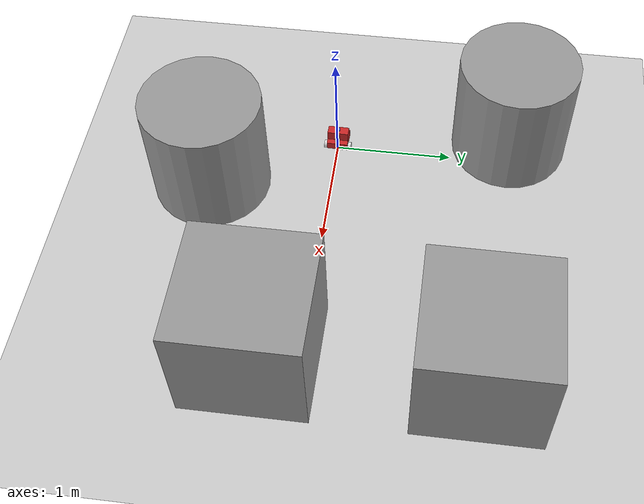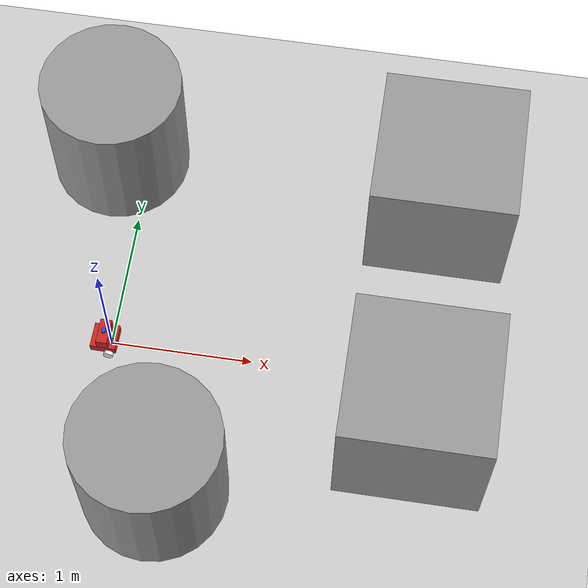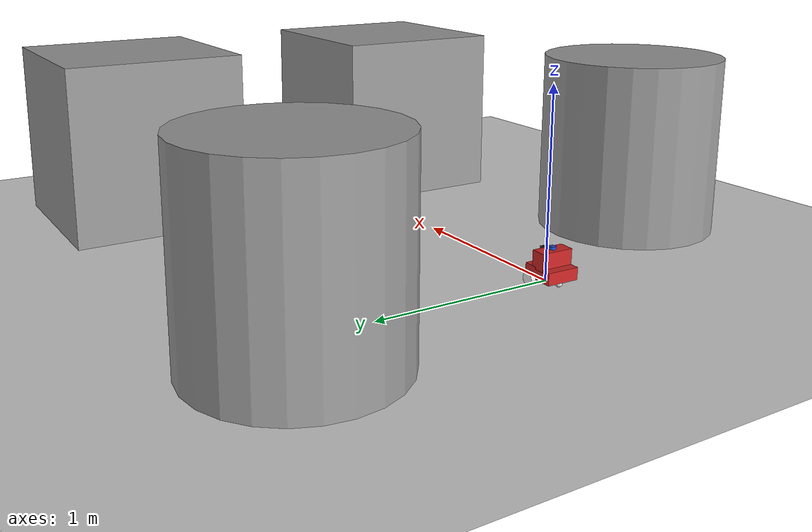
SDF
<sdf version="1.7">
 <world name="default">
  <light name="sun" type="directional">
   <pose>0 0 10 0 -0 0</pose>
   <diffuse>0.8 0.8 0.8 1</diffuse>
   <specular>0.2 0.2 0.2 1</specular>
   <attenuation>
    <range>1000</range>
    <constant>0.9</constant>
    <linear>0.01</linear>
    <quadratic>0.001</quadratic>
   </attenuation>
   <direction>-0.5 0.1 -0.9</direction>
   <spot><inner_angle>0</inner_angle><outer_angle>0</outer_angle><falloff>0</falloff></spot>
  </light>
  <model name="ground_plane">
   <static>1</static>
   <link name="link">
    <collision name="collision">
     <geometry><plane><normal>0 0 1</normal><size>100 100</size></plane></geometry>
     <surface><friction><ode><mu>100</mu><mu2>50</mu2></ode></friction></surface>
    </collision>
    <visual name="visual">
     <cast_shadows>0</cast_shadows>
     <geometry><plane><normal>0 0 1</normal><size>100 100</size></plane></geometry>
     <material>
      <script><uri>file://media/materials/scripts/gazebo.material</uri><name>Gazebo/Grey</name></script>
     </material>
    </visual>
   </link>
  </model>
  <gravity>0 0 -9.8</gravity>
  <magnetic_field>6e-06 2.3e-05 -4.2e-05</magnetic_field>
  <atmosphere type="adiabatic"/>
  <physics type="ode">
   <max_step_size>0.001</max_step_size>
   <real_time_factor>1</real_time_factor>
   <real_time_update_rate>1000</real_time_update_rate>
  </physics>
  <scene><ambient>0.4 0.4 0.4 1</ambient><background>0.7 0.7 0.7 1</background><shadows>1</shadows></scene>
  <audio><device>default</device></audio>
  <spherical_coordinates>
   <surface_model>EARTH_WGS84</surface_model>
   <latitude_deg>0</latitude_deg>
   <longitude_deg>0</longitude_deg>
   <elevation>0</elevation>
   <heading_deg>0</heading_deg>
  </spherical_coordinates>
  <model name="botluke">
   <link name="base_link">
    <inertial>
     <pose>-0.040833 0 0.053939 0 -0 0</pose>
     <mass>0.66</mass>
     <inertia>
      <ixx>0.00307384</ixx>
      <ixy>-1.61559e-27</ixy>
      <ixz>-0.000109917</ixz>
      <iyy>0.00312146</iyy>
      <iyz>0</iyz>
      <izz>0.00292976</izz>
     </inertia>
    </inertial>
    <collision name="base_link_fixed_joint_lump__chassis_link_collision">
     <pose>-0.04 0 0.0325 0 -0 0</pose>
     <geometry><box><size>0.18 0.18 0.065</size></box></geometry>
    </collision>
    <collision name="base_link_fixed_joint_lump__camera_link_collision_1">
     <pose>0.025 0 0.105 0 -0 0</pose>
     <geometry><box><size>0.014 0.04 0.08</size></box></geometry>
    </collision>
    <collision name="base_link_fixed_joint_lump__caster_holder_link_collision_2">
     <pose>-0.1 0 0 0 -0 0</pose>
     <geometry><cylinder><length>0.04</length><radius>0.0175</radius></cylinder></geometry>
    </collision>
    <collision name="base_link_fixed_joint_lump__caster_link_collision_3">
     <pose>-0.1 0 -0.02 0 -0 0</pose>
     <geometry><sphere><radius>0.0125</radius></sphere></geometry>
     <surface><friction><ode><mu>0.001</mu><mu2>0.001</mu2></ode></friction></surface>
    </collision>
    <collision name="base_link_fixed_joint_lump__ldlidar_base_collision_4">
     <pose>-0.04 0 0.1 0 -0 0</pose>
     <geometry><box><size>0.08 0.18 0.095</size></box></geometry>
    </collision>
    <collision name="base_link_fixed_joint_lump__ldlidar_link_collision_5">
     <pose>-0.04 0 0.155 0 0 -1.57079</pose>
     <geometry><cylinder><length>0.0175</length><radius>0.0175</radius></cylinder></geometry>
    </collision>
    <visual name="base_link_fixed_joint_lump__chassis_link_visual">
     <pose>-0.04 0 0.0325 0 -0 0</pose>
     <geometry><box><size>0.18 0.18 0.065</size></box></geometry>
     <material>
      <script><name>Gazebo/Red</name><uri>file://media/materials/scripts/gazebo.material</uri></script>
     </material>
    </visual>
    <visual name="base_link_fixed_joint_lump__camera_link_visual_1">
     <pose>0.025 0 0.105 0 -0 0</pose>
     <geometry><box><size>0.014 0.04 0.08</size></box></geometry>
     <material>
      <script><name>Gazebo/Black</name><uri>file://media/materials/scripts/gazebo.material</uri></script>
     </material>
    </visual>
    <visual name="base_link_fixed_joint_lump__caster_holder_link_visual_2">
     <pose>-0.1 0 0 0 -0 0</pose>
     <geometry><cylinder><length>0.04</length><radius>0.0175</radius></cylinder></geometry>
     <material>
      <script><name>Gazebo/White</name><uri>file://media/materials/scripts/gazebo.material</uri></script>
     </material>
    </visual>
    <visual name="base_link_fixed_joint_lump__caster_link_visual_3">
     <pose>-0.1 0 -0.02 0 -0 0</pose>
     <geometry><sphere><radius>0.0125</radius></sphere></geometry>
     <material>
      <script><name>Gazebo/White</name><uri>file://media/materials/scripts/gazebo.material</uri></script>
     </material>
    </visual>
    <visual name="base_link_fixed_joint_lump__ldlidar_base_visual_4">
     <pose>-0.04 0 0.1 0 -0 0</pose>
     <geometry><box><size>0.08 0.18 0.095</size></box></geometry>
     <material>
      <script><name>Gazebo/Red</name><uri>file://media/materials/scripts/gazebo.material</uri></script>
     </material>
    </visual>
    <visual name="base_link_fixed_joint_lump__ldlidar_link_visual_5">
     <pose>-0.04 0 0.155 0 0 -1.57079</pose>
     <geometry><cylinder><length>0.0175</length><radius>0.0175</radius></cylinder></geometry>
     <material>
      <script><name>Gazebo/Blue</name><uri>file://media/materials/scripts/gazebo.material</uri></script>
     </material>
    </visual>
    <sensor name="camera" type="camera">
     <visualize>1</visualize>
     <update_rate>10</update_rate>
     <camera name="head">
      <horizontal_fov>1.089</horizontal_fov>
      <image><width>640</width><height>480</height><format>R8G8B8</format></image>
      <clip><near>0.05</near><far>8</far></clip>
     </camera>
     <plugin name="camera_controller" filename="libgazebo_ros_camera.so">
      <frame_name>camera_link_optical</frame_name>
     </plugin>
     <pose>0.025 0 0.105 0 -0 0</pose>
    </sensor>
    <sensor name="laser" type="ray">
     <visualize>1</visualize>
     <update_rate>10</update_rate>
     <ray>
      <scan>
       <horizontal>
        <samples>360</samples>
        <min_angle>-3.14</min_angle>
        <max_angle>3.14</max_angle>
        <resolution>1</resolution>
       </horizontal>
       <vertical><samples>1</samples><min_angle>0</min_angle><max_angle>0</max_angle></vertical>
      </scan>
      <range><min>0.3</min><max>12</max></range>
     </ray>
     <plugin name="laser_controller" filename="libgazebo_ros_ray_sensor.so">
      <ros><remapping>~/out:=scan</remapping></ros>
      <output_type>sensor_msgs/LaserScan</output_type>
      <frame_name>ldlidar_link</frame_name>
     </plugin>
     <pose>-0.04 0 0.155 0 -0 -1.5708</pose>
    </sensor>
   </link>
   <joint name="left_wheel_joint" type="revolute">
    <pose relative_to="base_link">0 0.105 0 -1.5708 0 0</pose>
    <parent>base_link</parent>
    <child>left_wheel_link</child>
    <axis>
     <xyz>0 0 1</xyz>
     <limit><lower>-1e+16</lower><upper>1e+16</upper></limit>
     <dynamics><spring_reference>0</spring_reference><spring_stiffness>0</spring_stiffness></dynamics>
    </axis>
   </joint>
   <link name="left_wheel_link">
    <pose relative_to="left_wheel_joint">0 0 0 0 -0 0</pose>
    <inertial>
     <mass>0.05</mass>
     <inertia>
      <ixx>1.753e-05</ixx>
      <ixy>0</ixy>
      <ixz>0</ixz>
      <iyy>1.753e-05</iyy>
      <iyz>0</iyz>
      <izz>2.89851e-05</izz>
     </inertia>
    </inertial>
    <collision name="left_wheel_link_collision">
     <geometry><cylinder><length>0.027</length><radius>0.03405</radius></cylinder></geometry>
    </collision>
    <visual name="left_wheel_link_visual">
     <geometry><cylinder><length>0.027</length><radius>0.03405</radius></cylinder></geometry>
     <material>
      <script><name>Gazebo/White</name><uri>file://media/materials/scripts/gazebo.material</uri></script>
     </material>
    </visual>
   </link>
   <joint name="right_wheel_joint" type="revolute">
    <pose relative_to="base_link">0 -0.105 0 1.5708 -0 0</pose>
    <parent>base_link</parent>
    <child>right_wheel_link</child>
    <axis>
     <xyz>0 0 -1</xyz>
     <limit><lower>-1e+16</lower><upper>1e+16</upper></limit>
     <dynamics><spring_reference>0</spring_reference><spring_stiffness>0</spring_stiffness></dynamics>
    </axis>
   </joint>
   <link name="right_wheel_link">
    <pose relative_to="right_wheel_joint">0 0 0 0 -0 0</pose>
    <inertial>
     <mass>0.05</mass>
     <inertia>
      <ixx>1.753e-05</ixx>
      <ixy>0</ixy>
      <ixz>0</ixz>
      <iyy>1.753e-05</iyy>
      <iyz>0</iyz>
      <izz>2.89851e-05</izz>
     </inertia>
    </inertial>
    <collision name="right_wheel_link_collision">
     <geometry><cylinder><length>0.027</length><radius>0.03405</radius></cylinder></geometry>
    </collision>
    <visual name="right_wheel_link_visual">
     <geometry><cylinder><length>0.027</length><radius>0.03405</radius></cylinder></geometry>
     <material>
      <script><name>Gazebo/White</name><uri>file://media/materials/scripts/gazebo.material</uri></script>
     </material>
    </visual>
   </link>
   <static>0</static>
   <plugin name="gazebo_ros2_control" filename="libgazebo_ros2_control.so">
    <parameters>/home/jlukas/Desktop/My_Project/ROS2/techdiffbot/install/techdiffbot/share/techdiffbot/config/my_controllers.yaml</parameters>
    <parameters>/home/jlukas/Desktop/My_Project/ROS2/techdiffbot/install/techdiffbot/share/techdiffbot/config/gazebo_ros2_ctl_use_sim.yaml</parameters>
   </plugin>
   <pose>-0.00103 2.5e-05 0.034051 -0 -0.015537 -0.020438</pose>
  </model>
  <model name="unit_box">
   <pose>2.1715 1.38207 0.499995 -1e-05 -0 -0</pose>
   <link name="link">
    <inertial>
     <mass>1</mass>
     <inertia>
      <ixx>0.166667</ixx>
      <ixy>0</ixy>
      <ixz>0</ixz>
      <iyy>0.166667</iyy>
      <iyz>0</iyz>
      <izz>0.166667</izz>
     </inertia>
    </inertial>
    <collision name="collision"><geometry><box><size>1 1 1</size></box></geometry></collision>
    <visual name="visual">
     <geometry><box><size>1 1 1</size></box></geometry>
     <material>
      <script><name>Gazebo/Grey</name><uri>file://media/materials/scripts/gazebo.material</uri></script>
     </material>
    </visual>
   </link>
  </model>
  <model name="unit_cylinder">
   <pose>0.503673 -1.02818 0.499993 -3e-06 -4e-06 -0</pose>
   <link name="link">
    <inertial>
     <mass>1</mass>
     <inertia><ixx>0.145833</ixx><ixy>0</ixy><ixz>0</ixz><iyy>0.145833</iyy><iyz>0</iyz><izz>0.125</izz></inertia>
    </inertial>
    <collision name="collision">
     <geometry><cylinder><radius>0.5</radius><length>1</length></cylinder></geometry>
    </collision>
    <visual name="visual">
     <geometry><cylinder><radius>0.5</radius><length>1</length></cylinder></geometry>
     <material>
      <script><name>Gazebo/Grey</name><uri>file://media/materials/scripts/gazebo.material</uri></script>
     </material>
    </visual>
   </link>
  </model>
  <model name="unit_cylinder_0">
   <pose>-0.220986 1.50598 0.499993 -3e-06 -4e-06 -0</pose>
   <link name="link">
    <inertial>
     <mass>1</mass>
     <inertia><ixx>0.145833</ixx><ixy>0</ixy><ixz>0</ixz><iyy>0.145833</iyy><iyz>0</iyz><izz>0.125</izz></inertia>
    </inertial>
    <collision name="collision">
     <geometry><cylinder><radius>0.5</radius><length>1</length></cylinder></geometry>
    </collision>
    <visual name="visual">
     <geometry><cylinder><radius>0.5</radius><length>1</length></cylinder></geometry>
     <material>
      <script><name>Gazebo/Grey</name><uri>file://media/materials/scripts/gazebo.material</uri></script>
     </material>
    </visual>
   </link>
  </model>
  <model name="unit_box_0">
   <pose>2.17565 -0.350583 0.5 0 -0 0</pose>
   <link name="link">
    <inertial>
     <mass>1</mass>
     <inertia>
      <ixx>0.166667</ixx>
      <ixy>0</ixy>
      <ixz>0</ixz>
      <iyy>0.166667</iyy>
      <iyz>0</iyz>
      <izz>0.166667</izz>
     </inertia>
    </inertial>
    <collision name="collision"><geometry><box><size>1 1 1</size></box></geometry></collision>
    <visual name="visual">
     <geometry><box><size>1 1 1</size></box></geometry>
     <material>
      <script><name>Gazebo/Grey</name><uri>file://media/materials/scripts/gazebo.material</uri></script>
     </material>
    </visual>
   </link>
  </model>
 </world>
</sdf>
